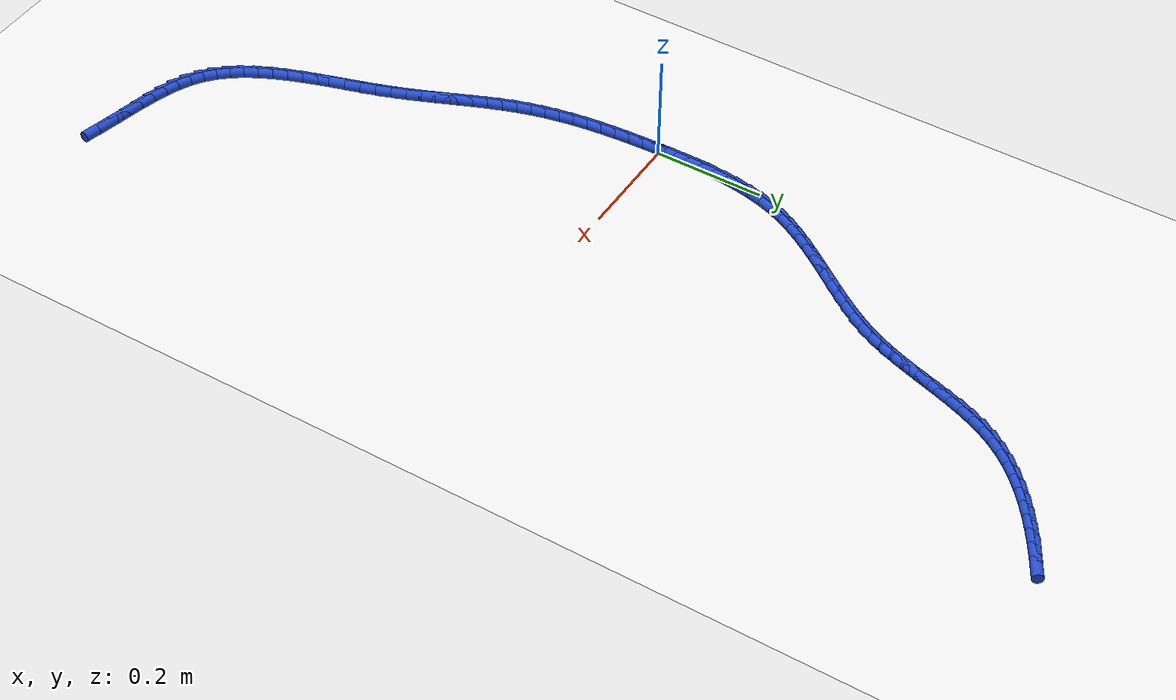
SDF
<sdf version="1.6">
 <world name="default">
  <model name="ground_plane">
   <static>1</static>
   <link name="link">
    <collision name="collision">
     <geometry><plane><normal>0 0 1</normal><size>100 100</size></plane></geometry>
     <surface><friction><ode><mu>100</mu><mu2>50</mu2></ode></friction></surface>
    </collision>
    <visual name="visual">
     <cast_shadows>0</cast_shadows>
     <geometry><plane><normal>0 0 1</normal><size>100 100</size></plane></geometry>
     <material>
      <script><uri>file://media/materials/scripts/gazebo.material</uri><name>Gazebo/WhiteGlow</name></script>
     </material>
    </visual>
   </link>
  </model>
  <model name="line">
   <link name="link_0">
    <pose>2.168404344971009e-18 -9.020562075079397e-17 0.01 0 1.57 -1.555804678287326</pose>
    <collision name="collision">
     <geometry><cylinder><radius>0.01</radius><length>0.08</length></cylinder></geometry>
    </collision>
    <visual name="visual">
     <material>
      <script><name>Gazebo/Blue</name><uri>file://media/materials/scripts/gazebo.material</uri></script>
     </material>
     <geometry><cylinder><radius>0.01</radius><length>0.08</length></cylinder></geometry>
    </visual>
   </link>
   <link name="link_1">
    <pose>-0.00041804875525708335 0.02788335357673787 0.01 0 1.57 1.5677613581458083</pose>
    <collision name="collision">
     <geometry><cylinder><radius>0.01</radius><length>0.08</length></cylinder></geometry>
    </collision>
    <visual name="visual">
     <material>
      <script><name>Gazebo/Blue</name><uri>file://media/materials/scripts/gazebo.material</uri></script>
     </material>
     <geometry><cylinder><radius>0.01</radius><length>0.08</length></cylinder></geometry>
    </visual>
   </link>
   <link name="link_2">
    <pose>-0.0003334461583093742 0.05575920567616949 0.01 0 1.57 1.5433722922550555</pose>
    <collision name="collision">
     <geometry><cylinder><radius>0.01</radius><length>0.08</length></cylinder></geometry>
    </collision>
    <visual name="visual">
     <material>
      <script><name>Gazebo/Blue</name><uri>file://media/materials/scripts/gazebo.material</uri></script>
     </material>
     <geometry><cylinder><radius>0.01</radius><length>0.08</length></cylinder></geometry>
    </visual>
   </link>
   <link name="link_3">
    <pose>0.00042833921404787775 0.08353026130812788 0.01 0 1.57 1.5123370714789628</pose>
    <collision name="collision">
     <geometry><cylinder><radius>0.01</radius><length>0.08</length></cylinder></geometry>
    </collision>
    <visual name="visual">
     <material>
      <script><name>Gazebo/Blue</name><uri>file://media/materials/scripts/gazebo.material</uri></script>
     </material>
     <geometry><cylinder><radius>0.01</radius><length>0.08</length></cylinder></geometry>
    </visual>
   </link>
   <link name="link_4">
    <pose>0.00204183878501942 0.11109922548244619 0.01 0 1.57 1.4742951656398995</pose>
    <collision name="collision">
     <geometry><cylinder><radius>0.01</radius><length>0.08</length></cylinder></geometry>
    </collision>
    <visual name="visual">
     <material>
      <script><name>Gazebo/Blue</name><uri>file://media/materials/scripts/gazebo.material</uri></script>
     </material>
     <geometry><cylinder><radius>0.01</radius><length>0.08</length></cylinder></geometry>
    </visual>
   </link>
   <link name="link_5">
    <pose>0.004681583977809999 0.13836880320895753 0.01 0 1.57 1.4288432194086575</pose>
    <collision name="collision">
     <geometry><cylinder><radius>0.01</radius><length>0.08</length></cylinder></geometry>
    </collision>
    <visual name="visual">
     <material>
      <script><name>Gazebo/Blue</name><uri>file://media/materials/scripts/gazebo.material</uri></script>
     </material>
     <geometry><cylinder><radius>0.01</radius><length>0.08</length></cylinder></geometry>
    </visual>
   </link>
   <link name="link_6">
    <pose>0.008522106215624365 0.16524169949749504 0.01 0 1.57 1.3755870765681562</pose>
    <collision name="collision">
     <geometry><cylinder><radius>0.01</radius><length>0.08</length></cylinder></geometry>
    </collision>
    <visual name="visual">
     <material>
      <script><name>Gazebo/Blue</name><uri>file://media/materials/scripts/gazebo.material</uri></script>
     </material>
     <geometry><cylinder><radius>0.01</radius><length>0.08</length></cylinder></geometry>
    </visual>
   </link>
   <link name="link_7">
    <pose>0.013737936921667266 0.19162061935789182 0.01 0 1.57 1.3142181358839318</pose>
    <collision name="collision">
     <geometry><cylinder><radius>0.01</radius><length>0.08</length></cylinder></geometry>
    </collision>
    <visual name="visual">
     <material>
      <script><name>Gazebo/Blue</name><uri>file://media/materials/scripts/gazebo.material</uri></script>
     </material>
     <geometry><cylinder><radius>0.01</radius><length>0.08</length></cylinder></geometry>
    </visual>
   </link>
   <link name="link_8">
    <pose>0.020503607519143447 0.21740826779998096 0.01 0 1.57 1.2446174004330555</pose>
    <collision name="collision">
     <geometry><cylinder><radius>0.01</radius><length>0.08</length></cylinder></geometry>
    </collision>
    <visual name="visual">
     <material>
      <script><name>Gazebo/Blue</name><uri>file://media/materials/scripts/gazebo.material</uri></script>
     </material>
     <geometry><cylinder><radius>0.01</radius><length>0.08</length></cylinder></geometry>
    </visual>
   </link>
   <link name="link_9">
    <pose>0.028993649431257665 0.24250734983359565 0.01 0 1.57 1.1683516715750837</pose>
    <collision name="collision">
     <geometry><cylinder><radius>0.01</radius><length>0.08</length></cylinder></geometry>
    </collision>
    <visual name="visual">
     <material>
      <script><name>Gazebo/Blue</name><uri>file://media/materials/scripts/gazebo.material</uri></script>
     </material>
     <geometry><cylinder><radius>0.01</radius><length>0.08</length></cylinder></geometry>
    </visual>
   </link>
   <link name="link_10">
    <pose>0.039350084687493445 0.2668366288274649 0.01 0 1.57 1.0979912688393525</pose>
    <collision name="collision">
     <geometry><cylinder><radius>0.01</radius><length>0.08</length></cylinder></geometry>
    </collision>
    <visual name="visual">
     <material>
      <script><name>Gazebo/Blue</name><uri>file://media/materials/scripts/gazebo.material</uri></script>
     </material>
     <geometry><cylinder><radius>0.01</radius><length>0.08</length></cylinder></geometry>
    </visual>
   </link>
   <link name="link_11">
    <pose>0.05143095082864313 0.29045514529234673 0.01 0 1.57 1.0402280914805118</pose>
    <collision name="collision">
     <geometry><cylinder><radius>0.01</radius><length>0.08</length></cylinder></geometry>
    </collision>
    <visual name="visual">
     <material>
      <script><name>Gazebo/Blue</name><uri>file://media/materials/scripts/gazebo.material</uri></script>
     </material>
     <geometry><cylinder><radius>0.01</radius><length>0.08</length></cylinder></geometry>
    </visual>
   </link>
   <link name="link_12">
    <pose>0.06494762483956859 0.31349438427189996 0.01 0 1.57 0.9951122047299491</pose>
    <collision name="collision">
     <geometry><cylinder><radius>0.01</radius><length>0.08</length></cylinder></geometry>
    </collision>
    <visual name="visual">
     <material>
      <script><name>Gazebo/Blue</name><uri>file://media/materials/scripts/gazebo.material</uri></script>
     </material>
     <geometry><cylinder><radius>0.01</radius><length>0.08</length></cylinder></geometry>
    </visual>
   </link>
   <link name="link_13">
    <pose>0.07961025847958947 0.33608643602289934 0.01 0 1.57 0.9623372005283656</pose>
    <collision name="collision">
     <geometry><cylinder><radius>0.01</radius><length>0.08</length></cylinder></geometry>
    </collision>
    <visual name="visual">
     <material>
      <script><name>Gazebo/Blue</name><uri>file://media/materials/scripts/gazebo.material</uri></script>
     </material>
     <geometry><cylinder><radius>0.01</radius><length>0.08</length></cylinder></geometry>
    </visual>
   </link>
   <link name="link_14">
    <pose>0.09512900350802551 0.35836339080212004 0.01 0 1.57 0.9415063660519493</pose>
    <collision name="collision">
     <geometry><cylinder><radius>0.01</radius><length>0.08</length></cylinder></geometry>
    </collision>
    <visual name="visual">
     <material>
      <script><name>Gazebo/Blue</name><uri>file://media/materials/scripts/gazebo.material</uri></script>
     </material>
     <geometry><cylinder><radius>0.01</radius><length>0.08</length></cylinder></geometry>
    </visual>
   </link>
   <link name="link_15">
    <pose>0.11121401168419631 0.380457338866337 0.01 0 1.57 0.9322741979206398</pose>
    <collision name="collision">
     <geometry><cylinder><radius>0.01</radius><length>0.08</length></cylinder></geometry>
    </collision>
    <visual name="visual">
     <material>
      <script><name>Gazebo/Blue</name><uri>file://media/materials/scripts/gazebo.material</uri></script>
     </material>
     <geometry><cylinder><radius>0.01</radius><length>0.08</length></cylinder></geometry>
    </visual>
   </link>
   <link name="link_16">
    <pose>0.1275754347674216 0.40250037047232534 0.01 0 1.57 0.9344250344870828</pose>
    <collision name="collision">
     <geometry><cylinder><radius>0.01</radius><length>0.08</length></cylinder></geometry>
    </collision>
    <visual name="visual">
     <material>
      <script><name>Gazebo/Blue</name><uri>file://media/materials/scripts/gazebo.material</uri></script>
     </material>
     <geometry><cylinder><radius>0.01</radius><length>0.08</length></cylinder></geometry>
    </visual>
   </link>
   <link name="link_17">
    <pose>0.14392342451702111 0.4246245758768601 0.01 0 1.57 0.947902521508266</pose>
    <collision name="collision">
     <geometry><cylinder><radius>0.01</radius><length>0.08</length></cylinder></geometry>
    </collision>
    <visual name="visual">
     <material>
      <script><name>Gazebo/Blue</name><uri>file://media/materials/scripts/gazebo.material</uri></script>
     </material>
     <geometry><cylinder><radius>0.01</radius><length>0.08</length></cylinder></geometry>
    </visual>
   </link>
   <link name="link_18">
    <pose>0.15996813269231455 0.4469620453367162 0.01 0 1.57 0.972798388985565</pose>
    <collision name="collision">
     <geometry><cylinder><radius>0.01</radius><length>0.08</length></cylinder></geometry>
    </collision>
    <visual name="visual">
     <material>
      <script><name>Gazebo/Blue</name><uri>file://media/materials/scripts/gazebo.material</uri></script>
     </material>
     <geometry><cylinder><radius>0.01</radius><length>0.08</length></cylinder></geometry>
    </visual>
   </link>
   <link name="link_19">
    <pose>0.17541971105262139 0.4696448691086685 0.01 0 1.57 1.0093012895549405</pose>
    <collision name="collision">
     <geometry><cylinder><radius>0.01</radius><length>0.08</length></cylinder></geometry>
    </collision>
    <visual name="visual">
     <material>
      <script><name>Gazebo/Blue</name><uri>file://media/materials/scripts/gazebo.material</uri></script>
     </material>
     <geometry><cylinder><radius>0.01</radius><length>0.08</length></cylinder></geometry>
    </visual>
   </link>
   <link name="link_20">
    <pose>0.18998831135726163 0.4928051374494925 0.01 0 1.57 1.057599973612592</pose>
    <collision name="collision">
     <geometry><cylinder><radius>0.01</radius><length>0.08</length></cylinder></geometry>
    </collision>
    <visual name="visual">
     <material>
      <script><name>Gazebo/Blue</name><uri>file://media/materials/scripts/gazebo.material</uri></script>
     </material>
     <geometry><cylinder><radius>0.01</radius><length>0.08</length></cylinder></geometry>
    </visual>
   </link>
   <link name="link_21">
    <pose>0.20338408536555477 0.5165749406159629 0.01 0 1.57 1.1171899864930799</pose>
    <collision name="collision">
     <geometry><cylinder><radius>0.01</radius><length>0.08</length></cylinder></geometry>
    </collision>
    <visual name="visual">
     <material>
      <script><name>Gazebo/Blue</name><uri>file://media/materials/scripts/gazebo.material</uri></script>
     </material>
     <geometry><cylinder><radius>0.01</radius><length>0.08</length></cylinder></geometry>
    </visual>
   </link>
   <link name="link_22">
    <pose>0.21533039753902353 0.5410796585803513 0.01 0 1.57 1.1752956946109956</pose>
    <collision name="collision">
     <geometry><cylinder><radius>0.01</radius><length>0.08</length></cylinder></geometry>
    </collision>
    <visual name="visual">
     <material>
      <script><name>Gazebo/Blue</name><uri>file://media/materials/scripts/gazebo.material</uri></script>
     </material>
     <geometry><cylinder><radius>0.01</radius><length>0.08</length></cylinder></geometry>
    </visual>
   </link>
   <link name="link_23">
    <pose>0.22585561039555185 0.5662897731192621 0.01 0 1.57 1.2192326725221612</pose>
    <collision name="collision">
     <geometry><cylinder><radius>0.01</radius><length>0.08</length></cylinder></geometry>
    </collision>
    <visual name="visual">
     <material>
      <script><name>Gazebo/Blue</name><uri>file://media/materials/scripts/gazebo.material</uri></script>
     </material>
     <geometry><cylinder><radius>0.01</radius><length>0.08</length></cylinder></geometry>
    </visual>
   </link>
   <link name="link_24">
    <pose>0.23529370016952308 0.5920205551406733 0.01 0 1.57 1.2486441904424388</pose>
    <collision name="collision">
     <geometry><cylinder><radius>0.01</radius><length>0.08</length></cylinder></geometry>
    </collision>
    <visual name="visual">
     <material>
      <script><name>Gazebo/Blue</name><uri>file://media/materials/scripts/gazebo.material</uri></script>
     </material>
     <geometry><cylinder><radius>0.01</radius><length>0.08</length></cylinder></geometry>
    </visual>
   </link>
   <link name="link_25">
    <pose>0.2439919789297083 0.6180805027333885 0.01 0 1.57 1.2637776436564487</pose>
    <collision name="collision">
     <geometry><cylinder><radius>0.01</radius><length>0.08</length></cylinder></geometry>
    </collision>
    <visual name="visual">
     <material>
      <script><name>Gazebo/Blue</name><uri>file://media/materials/scripts/gazebo.material</uri></script>
     </material>
     <geometry><cylinder><radius>0.01</radius><length>0.08</length></cylinder></geometry>
    </visual>
   </link>
   <link name="link_26">
    <pose>0.2522977587448785 0.6442781139862113 0.01 0 1.57 1.2647552210867419</pose>
    <collision name="collision">
     <geometry><cylinder><radius>0.01</radius><length>0.08</length></cylinder></geometry>
    </collision>
    <visual name="visual">
     <material>
      <script><name>Gazebo/Blue</name><uri>file://media/materials/scripts/gazebo.material</uri></script>
     </material>
     <geometry><cylinder><radius>0.01</radius><length>0.08</length></cylinder></geometry>
    </visual>
   </link>
   <link name="link_27">
    <pose>0.2605583516838046 0.670421886987945 0.01 0 1.57 1.2514835519428156</pose>
    <collision name="collision">
     <geometry><cylinder><radius>0.01</radius><length>0.08</length></cylinder></geometry>
    </collision>
    <visual name="visual">
     <material>
      <script><name>Gazebo/Blue</name><uri>file://media/materials/scripts/gazebo.material</uri></script>
     </material>
     <geometry><cylinder><radius>0.01</radius><length>0.08</length></cylinder></geometry>
    </visual>
   </link>
   <link name="link_28">
    <pose>0.2691210698152577 0.6963203198273932 0.01 0 1.57 1.2236429030320435</pose>
    <collision name="collision">
     <geometry><cylinder><radius>0.01</radius><length>0.08</length></cylinder></geometry>
    </collision>
    <visual name="visual">
     <material>
      <script><name>Gazebo/Blue</name><uri>file://media/materials/scripts/gazebo.material</uri></script>
     </material>
     <geometry><cylinder><radius>0.01</radius><length>0.08</length></cylinder></geometry>
    </visual>
   </link>
   <link name="link_29">
    <pose>0.27833322520800885 0.7217819105933594 0.01 0 1.57 1.1807592414857768</pose>
    <collision name="collision">
     <geometry><cylinder><radius>0.01</radius><length>0.08</length></cylinder></geometry>
    </collision>
    <visual name="visual">
     <material>
      <script><name>Gazebo/Blue</name><uri>file://media/materials/scripts/gazebo.material</uri></script>
     </material>
     <geometry><cylinder><radius>0.01</radius><length>0.08</length></cylinder></geometry>
    </visual>
   </link>
   <link name="link_30">
    <pose>0.28854212993082906 0.7466151573746472 0.01 0 1.57 1.122378694512556</pose>
    <collision name="collision">
     <geometry><cylinder><radius>0.01</radius><length>0.08</length></cylinder></geometry>
    </collision>
    <visual name="visual">
     <material>
      <script><name>Gazebo/Blue</name><uri>file://media/materials/scripts/gazebo.material</uri></script>
     </material>
     <geometry><cylinder><radius>0.01</radius><length>0.08</length></cylinder></geometry>
    </visual>
   </link>
   <link name="link_31">
    <pose>0.3000950960524893 0.77062855826006 0.01 0 1.57 1.048368953539662</pose>
    <collision name="collision">
     <geometry><cylinder><radius>0.01</radius><length>0.08</length></cylinder></geometry>
    </collision>
    <visual name="visual">
     <material>
      <script><name>Gazebo/Blue</name><uri>file://media/materials/scripts/gazebo.material</uri></script>
     </material>
     <geometry><cylinder><radius>0.01</radius><length>0.08</length></cylinder></geometry>
    </visual>
   </link>
   <link name="link_32">
    <pose>0.31333943564176064 0.7936306113384014 0.01 0 1.57 0.9631495357289305</pose>
    <collision name="collision">
     <geometry><cylinder><radius>0.01</radius><length>0.08</length></cylinder></geometry>
    </collision>
    <visual name="visual">
     <material>
      <script><name>Gazebo/Blue</name><uri>file://media/materials/scripts/gazebo.material</uri></script>
     </material>
     <geometry><cylinder><radius>0.01</radius><length>0.08</length></cylinder></geometry>
    </visual>
   </link>
   <link name="link_33">
    <pose>0.32852818111363963 0.81547166322142 0.01 0 1.57 0.8829360367698877</pose>
    <collision name="collision">
     <geometry><cylinder><radius>0.01</radius><length>0.08</length></cylinder></geometry>
    </collision>
    <visual name="visual">
     <material>
      <script><name>Gazebo/Blue</name><uri>file://media/materials/scripts/gazebo.material</uri></script>
     </material>
     <geometry><cylinder><radius>0.01</radius><length>0.08</length></cylinder></geometry>
    </visual>
   </link>
   <link name="link_34">
    <pose>0.34553669353886574 0.8361696999561314 0.01 0 1.57 0.8117078359685747</pose>
    <collision name="collision">
     <geometry><cylinder><radius>0.01</radius><length>0.08</length></cylinder></geometry>
    </collision>
    <visual name="visual">
     <material>
      <script><name>Gazebo/Blue</name><uri>file://media/materials/scripts/gazebo.material</uri></script>
     </material>
     <geometry><cylinder><radius>0.01</radius><length>0.08</length></cylinder></geometry>
    </visual>
   </link>
   <link name="link_35">
    <pose>0.3641457777673561 0.8557846788741106 0.01 0 1.57 0.7491647371227234</pose>
    <collision name="collision">
     <geometry><cylinder><radius>0.01</radius><length>0.08</length></cylinder></geometry>
    </collision>
    <visual name="visual">
     <material>
      <script><name>Gazebo/Blue</name><uri>file://media/materials/scripts/gazebo.material</uri></script>
     </material>
     <geometry><cylinder><radius>0.01</radius><length>0.08</length></cylinder></geometry>
    </visual>
   </link>
   <link name="link_36">
    <pose>0.384136238649017 0.8743765573069368 0.01 0 1.57 0.6947810538954751</pose>
    <collision name="collision">
     <geometry><cylinder><radius>0.01</radius><length>0.08</length></cylinder></geometry>
    </collision>
    <visual name="visual">
     <material>
      <script><name>Gazebo/Blue</name><uri>file://media/materials/scripts/gazebo.material</uri></script>
     </material>
     <geometry><cylinder><radius>0.01</radius><length>0.08</length></cylinder></geometry>
    </visual>
   </link>
   <link name="link_37">
    <pose>0.4052888810337545 0.8920052925861893 0.01 0 1.57 0.6479418657695787</pose>
    <collision name="collision">
     <geometry><cylinder><radius>0.01</radius><length>0.08</length></cylinder></geometry>
    </collision>
    <visual name="visual">
     <material>
      <script><name>Gazebo/Blue</name><uri>file://media/materials/scripts/gazebo.material</uri></script>
     </material>
     <geometry><cylinder><radius>0.01</radius><length>0.08</length></cylinder></geometry>
    </visual>
   </link>
   <link name="link_38">
    <pose>0.42738450977147474 0.9087308420434481 0.01 0 1.57 0.6080364912030934</pose>
    <collision name="collision">
     <geometry><cylinder><radius>0.01</radius><length>0.08</length></cylinder></geometry>
    </collision>
    <visual name="visual">
     <material>
      <script><name>Gazebo/Blue</name><uri>file://media/materials/scripts/gazebo.material</uri></script>
     </material>
     <geometry><cylinder><radius>0.01</radius><length>0.08</length></cylinder></geometry>
    </visual>
   </link>
   <link name="link_39">
    <pose>0.450203929712084 0.9246131630102927 0.01 0 1.57 0.5745146182743402</pose>
    <collision name="collision">
     <geometry><cylinder><radius>0.01</radius><length>0.08</length></cylinder></geometry>
    </collision>
    <visual name="visual">
     <material>
      <script><name>Gazebo/Blue</name><uri>file://media/materials/scripts/gazebo.material</uri></script>
     </material>
     <geometry><cylinder><radius>0.01</radius><length>0.08</length></cylinder></geometry>
    </visual>
   </link>
   <link name="link_40">
    <pose>0.47352804166693796 0.9397121781923473 0.01 0 1.57 0.5454172004428118</pose>
    <collision name="collision">
     <geometry><cylinder><radius>0.01</radius><length>0.08</length></cylinder></geometry>
    </collision>
    <visual name="visual">
     <material>
      <script><name>Gazebo/Blue</name><uri>file://media/materials/scripts/gazebo.material</uri></script>
     </material>
     <geometry><cylinder><radius>0.01</radius><length>0.08</length></cylinder></geometry>
    </visual>
   </link>
   <link name="link_41">
    <pose>0.4971882328180453 0.9540695932006136 0.01 0 1.57 0.5165480859321171</pose>
    <collision name="collision">
     <geometry><cylinder><radius>0.01</radius><length>0.08</length></cylinder></geometry>
    </collision>
    <visual name="visual">
     <material>
      <script><name>Gazebo/Blue</name><uri>file://media/materials/scripts/gazebo.material</uri></script>
     </material>
     <geometry><cylinder><radius>0.01</radius><length>0.08</length></cylinder></geometry>
    </visual>
   </link>
   <link name="link_211">
    <pose>0.47424217268076174 -0.8539090455916215 0.01 0 1.57 -0.22139645480602035</pose>
    <collision name="collision">
     <geometry><cylinder><radius>0.01</radius><length>0.08</length></cylinder></geometry>
    </collision>
    <visual name="visual">
     <material>
      <script><name>Gazebo/Blue</name><uri>file://media/materials/scripts/gazebo.material</uri></script>
     </material>
     <geometry><cylinder><radius>0.01</radius><length>0.08</length></cylinder></geometry>
    </visual>
   </link>
   <link name="link_212">
    <pose>0.44654202749075983 -0.8476741261151239 0.01 0 1.57 -0.20659907488679585</pose>
    <collision name="collision">
     <geometry><cylinder><radius>0.01</radius><length>0.08</length></cylinder></geometry>
    </collision>
    <visual name="visual">
     <material>
      <script><name>Gazebo/Blue</name><uri>file://media/materials/scripts/gazebo.material</uri></script>
     </material>
     <geometry><cylinder><radius>0.01</radius><length>0.08</length></cylinder></geometry>
    </visual>
   </link>
   <link name="link_213">
    <pose>0.4187318747819603 -0.841845407945726 0.01 0 1.57 -0.21087304003880245</pose>
    <collision name="collision">
     <geometry><cylinder><radius>0.01</radius><length>0.08</length></cylinder></geometry>
    </collision>
    <visual name="visual">
     <material>
      <script><name>Gazebo/Blue</name><uri>file://media/materials/scripts/gazebo.material</uri></script>
     </material>
     <geometry><cylinder><radius>0.01</radius><length>0.08</length></cylinder></geometry>
    </visual>
   </link>
   <link name="link_214">
    <pose>0.3911721698485467 -0.8359461065843627 0.01 0 1.57 -0.23480651253919066</pose>
    <collision name="collision">
     <geometry><cylinder><radius>0.01</radius><length>0.08</length></cylinder></geometry>
    </collision>
    <visual name="visual">
     <material>
      <script><name>Gazebo/Blue</name><uri>file://media/materials/scripts/gazebo.material</uri></script>
     </material>
     <geometry><cylinder><radius>0.01</radius><length>0.08</length></cylinder></geometry>
    </visual>
   </link>
   <link name="link_215">
    <pose>0.3642233679847034 -0.8294994375319698 0.01 0 1.57 -0.2800318211452851</pose>
    <collision name="collision">
     <geometry><cylinder><radius>0.01</radius><length>0.08</length></cylinder></geometry>
    </collision>
    <visual name="visual">
     <material>
      <script><name>Gazebo/Blue</name><uri>file://media/materials/scripts/gazebo.material</uri></script>
     </material>
     <geometry><cylinder><radius>0.01</radius><length>0.08</length></cylinder></geometry>
    </visual>
   </link>
   <link name="link_216">
    <pose>0.338245924484614 -0.822028616289482 0.01 0 1.57 -0.3491189570582003</pose>
    <collision name="collision">
     <geometry><cylinder><radius>0.01</radius><length>0.08</length></cylinder></geometry>
    </collision>
    <visual name="visual">
     <material>
      <script><name>Gazebo/Blue</name><uri>file://media/materials/scripts/gazebo.material</uri></script>
     </material>
     <geometry><cylinder><radius>0.01</radius><length>0.08</length></cylinder></geometry>
    </visual>
   </link>
   <link name="link_217">
    <pose>0.3136002946424625 -0.8130568583578351 0.01 0 1.57 -0.44510465710015945</pose>
    <collision name="collision">
     <geometry><cylinder><radius>0.01</radius><length>0.08</length></cylinder></geometry>
    </collision>
    <visual name="visual">
     <material>
      <script><name>Gazebo/Blue</name><uri>file://media/materials/scripts/gazebo.material</uri></script>
     </material>
     <geometry><cylinder><radius>0.01</radius><length>0.08</length></cylinder></geometry>
    </visual>
   </link>
   <link name="link_218">
    <pose>0.2906469337524327 -0.8021073792379643 0.01 0 1.57 -0.5701610808277296</pose>
    <collision name="collision">
     <geometry><cylinder><radius>0.01</radius><length>0.08</length></cylinder></geometry>
    </collision>
    <visual name="visual">
     <material>
      <script><name>Gazebo/Blue</name><uri>file://media/materials/scripts/gazebo.material</uri></script>
     </material>
     <geometry><cylinder><radius>0.01</radius><length>0.08</length></cylinder></geometry>
    </visual>
   </link>
   <link name="link_219">
    <pose>0.26974495114022146 -0.7887051150528689 0.01 0 1.57 -0.711378718988313</pose>
    <collision name="collision">
     <geometry><cylinder><radius>0.01</radius><length>0.08</length></cylinder></geometry>
    </collision>
    <visual name="visual">
     <material>
      <script><name>Gazebo/Blue</name><uri>file://media/materials/scripts/gazebo.material</uri></script>
     </material>
     <geometry><cylinder><radius>0.01</radius><length>0.08</length></cylinder></geometry>
    </visual>
   </link>
   <link name="link_220">
    <pose>0.2510704144004211 -0.7726089937643067 0.01 0 1.57 -0.8400057885740506</pose>
    <collision name="collision">
     <geometry><cylinder><radius>0.01</radius><length>0.08</length></cylinder></geometry>
    </collision>
    <visual name="visual">
     <material>
      <script><name>Gazebo/Blue</name><uri>file://media/materials/scripts/gazebo.material</uri></script>
     </material>
     <geometry><cylinder><radius>0.01</radius><length>0.08</length></cylinder></geometry>
    </visual>
   </link>
   <link name="link_221">
    <pose>0.23443249057132787 -0.7540469715457502 0.01 0 1.57 -0.94994692143655</pose>
    <collision name="collision">
     <geometry><cylinder><radius>0.01</radius><length>0.08</length></cylinder></geometry>
    </collision>
    <visual name="visual">
     <material>
      <script><name>Gazebo/Blue</name><uri>file://media/materials/scripts/gazebo.material</uri></script>
     </material>
     <geometry><cylinder><radius>0.01</radius><length>0.08</length></cylinder></geometry>
    </visual>
   </link>
   <link name="link_222">
    <pose>0.21959655539720146 -0.7333029852770996 0.01 0 1.57 -1.0407230140653314</pose>
    <collision name="collision">
     <geometry><cylinder><radius>0.01</radius><length>0.08</length></cylinder></geometry>
    </collision>
    <visual name="visual">
     <material>
      <script><name>Gazebo/Blue</name><uri>file://media/materials/scripts/gazebo.material</uri></script>
     </material>
     <geometry><cylinder><radius>0.01</radius><length>0.08</length></cylinder></geometry>
    </visual>
   </link>
   <link name="link_223">
    <pose>0.206327984622302 -0.7106609718382567 0.01 0 1.57 -1.1135085153203608</pose>
    <collision name="collision">
     <geometry><cylinder><radius>0.01</radius><length>0.08</length></cylinder></geometry>
    </collision>
    <visual name="visual">
     <material>
      <script><name>Gazebo/Blue</name><uri>file://media/materials/scripts/gazebo.material</uri></script>
     </material>
     <geometry><cylinder><radius>0.01</radius><length>0.08</length></cylinder></geometry>
    </visual>
   </link>
   <link name="link_224">
    <pose>0.1943921539908894 -0.6864048681091223 0.01 0 1.57 -1.170132759965887</pose>
    <collision name="collision">
     <geometry><cylinder><radius>0.01</radius><length>0.08</length></cylinder></geometry>
    </collision>
    <visual name="visual">
     <material>
      <script><name>Gazebo/Blue</name><uri>file://media/materials/scripts/gazebo.material</uri></script>
     </material>
     <geometry><cylinder><radius>0.01</radius><length>0.08</length></cylinder></geometry>
    </visual>
   </link>
   <link name="link_225">
    <pose>0.18355443924722356 -0.6608186109695972 0.01 0 1.57 -1.212452173364445</pose>
    <collision name="collision">
     <geometry><cylinder><radius>0.01</radius><length>0.08</length></cylinder></geometry>
    </collision>
    <visual name="visual">
     <material>
      <script><name>Gazebo/Blue</name><uri>file://media/materials/scripts/gazebo.material</uri></script>
     </material>
     <geometry><cylinder><radius>0.01</radius><length>0.08</length></cylinder></geometry>
    </visual>
   </link>
   <link name="link_226">
    <pose>0.1735802161355643 -0.6341861372995818 0.01 0 1.57 -1.242039259955677</pose>
    <collision name="collision">
     <geometry><cylinder><radius>0.01</radius><length>0.08</length></cylinder></geometry>
    </collision>
    <visual name="visual">
     <material>
      <script><name>Gazebo/Blue</name><uri>file://media/materials/scripts/gazebo.material</uri></script>
     </material>
     <geometry><cylinder><radius>0.01</radius><length>0.08</length></cylinder></geometry>
    </visual>
   </link>
   <link name="link_227">
    <pose>0.16423486040017166 -0.606791383978978 0.01 0 1.57 -1.2600613561021106</pose>
    <collision name="collision">
     <geometry><cylinder><radius>0.01</radius><length>0.08</length></cylinder></geometry>
    </collision>
    <visual name="visual">
     <material>
      <script><name>Gazebo/Blue</name><uri>file://media/materials/scripts/gazebo.material</uri></script>
     </material>
     <geometry><cylinder><radius>0.01</radius><length>0.08</length></cylinder></geometry>
    </visual>
   </link>
   <link name="link_228">
    <pose>0.15528374778530551 -0.5789182878876862 0.01 0 1.57 -1.267249460006225</pose>
    <collision name="collision">
     <geometry><cylinder><radius>0.01</radius><length>0.08</length></cylinder></geometry>
    </collision>
    <visual name="visual">
     <material>
      <script><name>Gazebo/Blue</name><uri>file://media/materials/scripts/gazebo.material</uri></script>
     </material>
     <geometry><cylinder><radius>0.01</radius><length>0.08</length></cylinder></geometry>
    </visual>
   </link>
   <link name="link_229">
    <pose>0.1464922540352258 -0.5508507859056073 0.01 0 1.57 -1.2638988551234969</pose>
    <collision name="collision">
     <geometry><cylinder><radius>0.01</radius><length>0.08</length></cylinder></geometry>
    </collision>
    <visual name="visual">
     <material>
      <script><name>Gazebo/Blue</name><uri>file://media/materials/scripts/gazebo.material</uri></script>
     </material>
     <geometry><cylinder><radius>0.01</radius><length>0.08</length></cylinder></geometry>
    </visual>
   </link>
   <link name="link_230">
    <pose>0.13762575489419251 -0.5228728149126427 0.01 0 1.57 -1.2498732214992614</pose>
    <collision name="collision">
     <geometry><cylinder><radius>0.01</radius><length>0.08</length></cylinder></geometry>
    </collision>
    <visual name="visual">
     <material>
      <script><name>Gazebo/Blue</name><uri>file://media/materials/scripts/gazebo.material</uri></script>
     </material>
     <geometry><cylinder><radius>0.01</radius><length>0.08</length></cylinder></geometry>
    </visual>
   </link>
   <link name="link_231">
    <pose>0.1284496261064655 -0.49526831178869285 0.01 0 1.57 -1.2250056572330972</pose>
    <collision name="collision">
     <geometry><cylinder><radius>0.01</radius><length>0.08</length></cylinder></geometry>
    </collision>
    <visual name="visual">
     <material>
      <script><name>Gazebo/Blue</name><uri>file://media/materials/scripts/gazebo.material</uri></script>
     </material>
     <geometry><cylinder><radius>0.01</radius><length>0.08</length></cylinder></geometry>
    </visual>
   </link>
   <link name="link_232">
    <pose>0.11873832761293268 -0.4683123685629491 0.01 0 1.57 -1.197813410059825</pose>
    <collision name="collision">
     <geometry><cylinder><radius>0.01</radius><length>0.08</length></cylinder></geometry>
    </collision>
    <visual name="visual">
     <material>
      <script><name>Gazebo/Blue</name><uri>file://media/materials/scripts/gazebo.material</uri></script>
     </material>
     <geometry><cylinder><radius>0.01</radius><length>0.08</length></cylinder></geometry>
    </visual>
   </link>
   <link name="link_233">
    <pose>0.10847313035512061 -0.44207871521788805 0.01 0 1.57 -1.1776764361943888</pose>
    <collision name="collision">
     <geometry><cylinder><radius>0.01</radius><length>0.08</length></cylinder></geometry>
    </collision>
    <visual name="visual">
     <material>
      <script><name>Gazebo/Blue</name><uri>file://media/materials/scripts/gazebo.material</uri></script>
     </material>
     <geometry><cylinder><radius>0.01</radius><length>0.08</length></cylinder></geometry>
    </visual>
   </link>
   <link name="link_234">
    <pose>0.09784094227691485 -0.41644086275562375 0.01 0 1.57 -1.165461308701453</pose>
    <collision name="collision">
     <geometry><cylinder><radius>0.01</radius><length>0.08</length></cylinder></geometry>
    </collision>
    <visual name="visual">
     <material>
      <script><name>Gazebo/Blue</name><uri>file://media/materials/scripts/gazebo.material</uri></script>
     </material>
     <geometry><cylinder><radius>0.01</radius><length>0.08</length></cylinder></geometry>
    </visual>
   </link>
   <link name="link_235">
    <pose>0.08703752071678778 -0.391263705943155 0.01 0 1.57 -1.161553647322843</pose>
    <collision name="collision">
     <geometry><cylinder><radius>0.01</radius><length>0.08</length></cylinder></geometry>
    </collision>
    <visual name="visual">
     <material>
      <script><name>Gazebo/Blue</name><uri>file://media/materials/scripts/gazebo.material</uri></script>
     </material>
     <geometry><cylinder><radius>0.01</radius><length>0.08</length></cylinder></geometry>
    </visual>
   </link>
   <link name="link_236">
    <pose>0.07625862301321168 -0.36641213954748014 0.01 0 1.57 -1.166261500140701</pose>
    <collision name="collision">
     <geometry><cylinder><radius>0.01</radius><length>0.08</length></cylinder></geometry>
    </collision>
    <visual name="visual">
     <material>
      <script><name>Gazebo/Blue</name><uri>file://media/materials/scripts/gazebo.material</uri></script>
     </material>
     <geometry><cylinder><radius>0.01</radius><length>0.08</length></cylinder></geometry>
    </visual>
   </link>
   <link name="link_237">
    <pose>0.06570000650465893 -0.3417510583355974 0.01 0 1.57 -1.1798134019785211</pose>
    <collision name="collision">
     <geometry><cylinder><radius>0.01</radius><length>0.08</length></cylinder></geometry>
    </collision>
    <visual name="visual">
     <material>
      <script><name>Gazebo/Blue</name><uri>file://media/materials/scripts/gazebo.material</uri></script>
     </material>
     <geometry><cylinder><radius>0.01</radius><length>0.08</length></cylinder></geometry>
    </visual>
   </link>
   <link name="link_238">
    <pose>0.0555574285296018 -0.31714535707450514 0.01 0 1.57 -1.2023390421263644</pose>
    <collision name="collision">
     <geometry><cylinder><radius>0.01</radius><length>0.08</length></cylinder></geometry>
    </collision>
    <visual name="visual">
     <material>
      <script><name>Gazebo/Blue</name><uri>file://media/materials/scripts/gazebo.material</uri></script>
     </material>
     <geometry><cylinder><radius>0.01</radius><length>0.08</length></cylinder></geometry>
    </visual>
   </link>
   <link name="link_239">
    <pose>0.046026646426512635 -0.29245993053120173 0.01 0 1.57 -1.2338303469170115</pose>
    <collision name="collision">
     <geometry><cylinder><radius>0.01</radius><length>0.08</length></cylinder></geometry>
    </collision>
    <visual name="visual">
     <material>
      <script><name>Gazebo/Blue</name><uri>file://media/materials/scripts/gazebo.material</uri></script>
     </material>
     <geometry><cylinder><radius>0.01</radius><length>0.08</length></cylinder></geometry>
    </visual>
   </link>
   <link name="link_240">
    <pose>0.03730341753386398 -0.26755967347268617 0.01 0 1.57 -1.2740522867575252</pose>
    <collision name="collision">
     <geometry><cylinder><radius>0.01</radius><length>0.08</length></cylinder></geometry>
    </collision>
    <visual name="visual">
     <material>
      <script><name>Gazebo/Blue</name><uri>file://media/materials/scripts/gazebo.material</uri></script>
     </material>
     <geometry><cylinder><radius>0.01</radius><length>0.08</length></cylinder></geometry>
    </visual>
   </link>
   <link name="link_241">
    <pose>0.02958274832519573 -0.24230994017903593 0.01 0 1.57 -1.3187466281291087</pose>
    <collision name="collision">
     <geometry><cylinder><radius>0.01</radius><length>0.08</length></cylinder></geometry>
    </collision>
    <visual name="visual">
     <material>
      <script><name>Gazebo/Blue</name><uri>file://media/materials/scripts/gazebo.material</uri></script>
     </material>
     <geometry><cylinder><radius>0.01</radius><length>0.08</length></cylinder></geometry>
    </visual>
   </link>
   <link name="link_242">
    <pose>0.02296976609298328 -0.21663108904304879 0.01 0 1.57 -1.3602383997538106</pose>
    <collision name="collision">
     <geometry><cylinder><radius>0.01</radius><length>0.08</length></cylinder></geometry>
    </collision>
    <visual name="visual">
     <material>
      <script><name>Gazebo/Blue</name><uri>file://media/materials/scripts/gazebo.material</uri></script>
     </material>
     <geometry><cylinder><radius>0.01</radius><length>0.08</length></cylinder></geometry>
    </visual>
   </link>
   <link name="link_243">
    <pose>0.017395561606269476 -0.19054998504156678 0.01 0 1.57 -1.3976788431207818</pose>
    <collision name="collision">
     <geometry><cylinder><radius>0.01</radius><length>0.08</length></cylinder></geometry>
    </collision>
    <visual name="visual">
     <material>
      <script><name>Gazebo/Blue</name><uri>file://media/materials/scripts/gazebo.material</uri></script>
     </material>
     <geometry><cylinder><radius>0.01</radius><length>0.08</length></cylinder></geometry>
    </visual>
   </link>
   <link name="link_244">
    <pose>0.012771302637992026 -0.16410568559366948 0.01 0 1.57 -1.4311301610873044</pose>
    <collision name="collision">
     <geometry><cylinder><radius>0.01</radius><length>0.08</length></cylinder></geometry>
    </collision>
    <visual name="visual">
     <material>
      <script><name>Gazebo/Blue</name><uri>file://media/materials/scripts/gazebo.material</uri></script>
     </material>
     <geometry><cylinder><radius>0.01</radius><length>0.08</length></cylinder></geometry>
    </visual>
   </link>
   <link name="link_245">
    <pose>0.009008156961088577 -0.13733724811843595 0.01 0 1.57 -1.460689822400245</pose>
    <collision name="collision">
     <geometry><cylinder><radius>0.01</radius><length>0.08</length></cylinder></geometry>
    </collision>
    <visual name="visual">
     <material>
      <script><name>Gazebo/Blue</name><uri>file://media/materials/scripts/gazebo.material</uri></script>
     </material>
     <geometry><cylinder><radius>0.01</radius><length>0.08</length></cylinder></geometry>
    </visual>
   </link>
   <link name="link_246">
    <pose>0.006017292348496807 -0.11028373003494552 0.01 0 1.57 -1.4864745990151258</pose>
    <collision name="collision">
     <geometry><cylinder><radius>0.01</radius><length>0.08</length></cylinder></geometry>
    </collision>
    <visual name="visual">
     <material>
      <script><name>Gazebo/Blue</name><uri>file://media/materials/scripts/gazebo.material</uri></script>
     </material>
     <geometry><cylinder><radius>0.01</radius><length>0.08</length></cylinder></geometry>
    </visual>
   </link>
   <link name="link_247">
    <pose>0.0037098765731543915 -0.08298418876227746 0.01 0 1.57 -1.5086077488153127</pose>
    <collision name="collision">
     <geometry><cylinder><radius>0.01</radius><length>0.08</length></cylinder></geometry>
    </collision>
    <visual name="visual">
     <material>
      <script><name>Gazebo/Blue</name><uri>file://media/materials/scripts/gazebo.material</uri></script>
     </material>
     <geometry><cylinder><radius>0.01</radius><length>0.08</length></cylinder></geometry>
    </visual>
   </link>
   <link name="link_248">
    <pose>0.001997077407999004 -0.05547768171951099 0.01 0 1.57 -1.5272091258343745</pose>
    <collision name="collision">
     <geometry><cylinder><radius>0.01</radius><length>0.08</length></cylinder></geometry>
    </collision>
    <visual name="visual">
     <material>
      <script><name>Gazebo/Blue</name><uri>file://media/materials/scripts/gazebo.material</uri></script>
     </material>
     <geometry><cylinder><radius>0.01</radius><length>0.08</length></cylinder></geometry>
    </visual>
   </link>
   <link name="link_249">
    <pose>0.0007900626259683168 -0.027803266325725464 0.01 0 1.57 -1.5423877913871478</pose>
    <collision name="collision">
     <geometry><cylinder><radius>0.01</radius><length>0.08</length></cylinder></geometry>
    </collision>
    <visual name="visual">
     <material>
      <script><name>Gazebo/Blue</name><uri>file://media/materials/scripts/gazebo.material</uri></script>
     </material>
     <geometry><cylinder><radius>0.01</radius><length>0.08</length></cylinder></geometry>
    </visual>
   </link>
   <link name="link_250">
    <pose>4.0115480381963664e-18 -9.71445146547012e-17 0.01 0 1.57 -1.5542366351115402</pose>
    <collision name="collision">
     <geometry><cylinder><radius>0.01</radius><length>0.08</length></cylinder></geometry>
    </collision>
    <visual name="visual">
     <material>
      <script><name>Gazebo/Blue</name><uri>file://media/materials/scripts/gazebo.material</uri></script>
     </material>
     <geometry><cylinder><radius>0.01</radius><length>0.08</length></cylinder></geometry>
    </visual>
   </link>
   <link name="link_251">
    <pose>-0.000461942696968261 0.027893059838585817 0.01 0 1.57 -1.5628285373167228</pose>
    <collision name="collision">
     <geometry><cylinder><radius>0.01</radius><length>0.08</length></cylinder></geometry>
    </collision>
    <visual name="visual">
     <material>
      <script><name>Gazebo/Blue</name><uri>file://media/materials/scripts/gazebo.material</uri></script>
     </material>
     <geometry><cylinder><radius>0.01</radius><length>0.08</length></cylinder></geometry>
    </visual>
   </link>
   <link name="link_252">
    <pose>-0.0006845976919988043 0.055836855770953014 0.01 0 1.57 -1.5585362634054063</pose>
    <collision name="collision">
     <geometry><cylinder><radius>0.01</radius><length>0.08</length></cylinder></geometry>
    </collision>
    <visual name="visual">
     <material>
      <script><name>Gazebo/Blue</name><uri>file://media/materials/scripts/gazebo.material</uri></script>
     </material>
     <geometry><cylinder><radius>0.01</radius><length>0.08</length></cylinder></geometry>
    </visual>
   </link>
  </model>
 </world>
</sdf>
